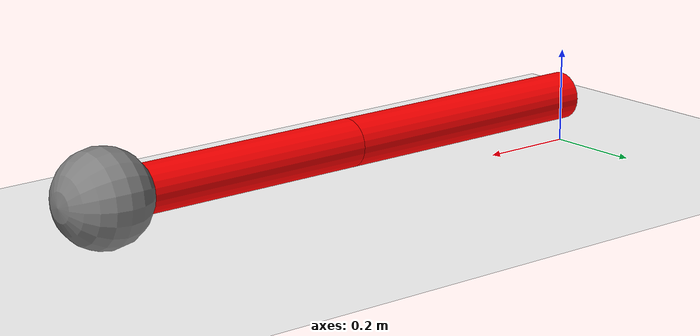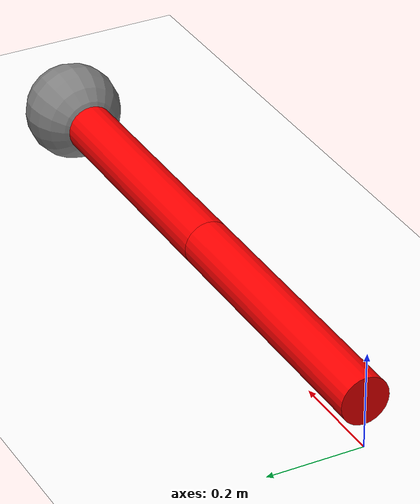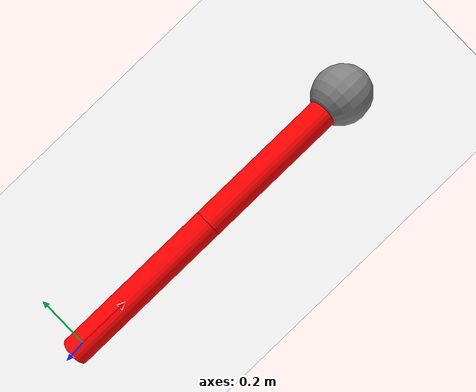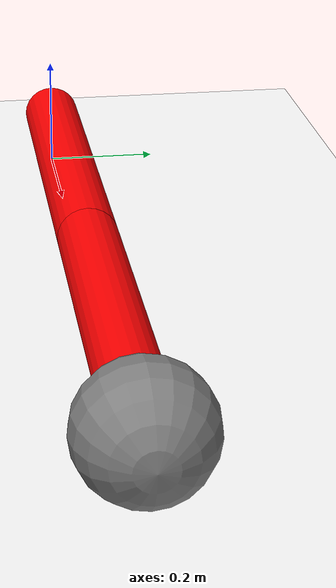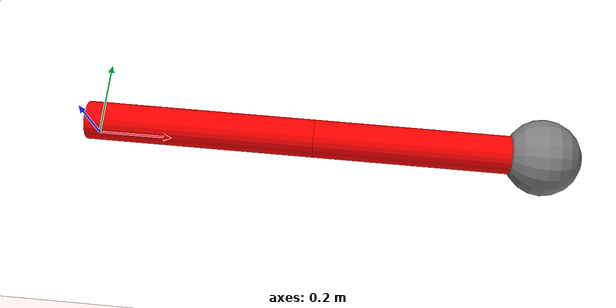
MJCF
<mujoco>
	<asset>
		<material name="red"   rgba="1 0 0 1"/>
		<material name="green" rgba="0 1 0 1"/>
		<material name="blue"  rgba="0 0 1 1"/>
		<material name="white" rgba="1 1 1 1"/>
		<material name="gray"  rgba=".5 .5 .5 1"/>
	</asset>

    <option collision="predefined"/>

    <worldbody>
        <light diffuse=".5 .5 .5" pos="0 0 10" dir="0 0 -1"/>
        <geom type="plane" size="2 2 0.1" rgba="1 1 1 1"/>

        <body name="edge 0" pos="0.3 0 0.1" euler="0 90 0">
            <joint name="joint 0" type="hinge" axis="-1 0 0" pos="0 0 -0.3"/>
            <geom name="geom edge 0" type="cylinder" size="0.05 0.3" material="red"/>
            <body name="edge 1" pos="0 0 0.6" euler="0 0 0">
                <joint name="joint 1" type="hinge" axis="-1 0 0" pos="0 0 -0.3"/>
                <geom name="geom edge 1" type="cylinder" size="0.05 0.3" material="red"/>
                <site name="tip" size="0.1" pos="0 0 0.3"/>
            </body>
        </body>

        <body name="edge 0 shade" pos="0.3 0 0.1" euler="0 90 0">
            <joint name="joint 0 shade" type="hinge" axis="-1 0 0" pos="0 0 -0.3"/>
            <geom name="geom edge 0 shade" type="cylinder" size="0.05 0.3" material="green"/>
            <body name="edge 1 shade" pos="0 0 0.6" euler="0 0 0">
                <joint name="joint 1 shade" type="hinge" axis="-1 0 0" pos="0 0 -0.3"/>
                <geom name="geom edge 1 shade" type="cylinder" size="0.05 0.3" material="green"/>
            </body>
        </body>
    </worldbody>

    <contact>
    </contact>

    <sensor>
      <framepos objtype="site" objname="tip"/>
    </sensor>
</mujoco>
